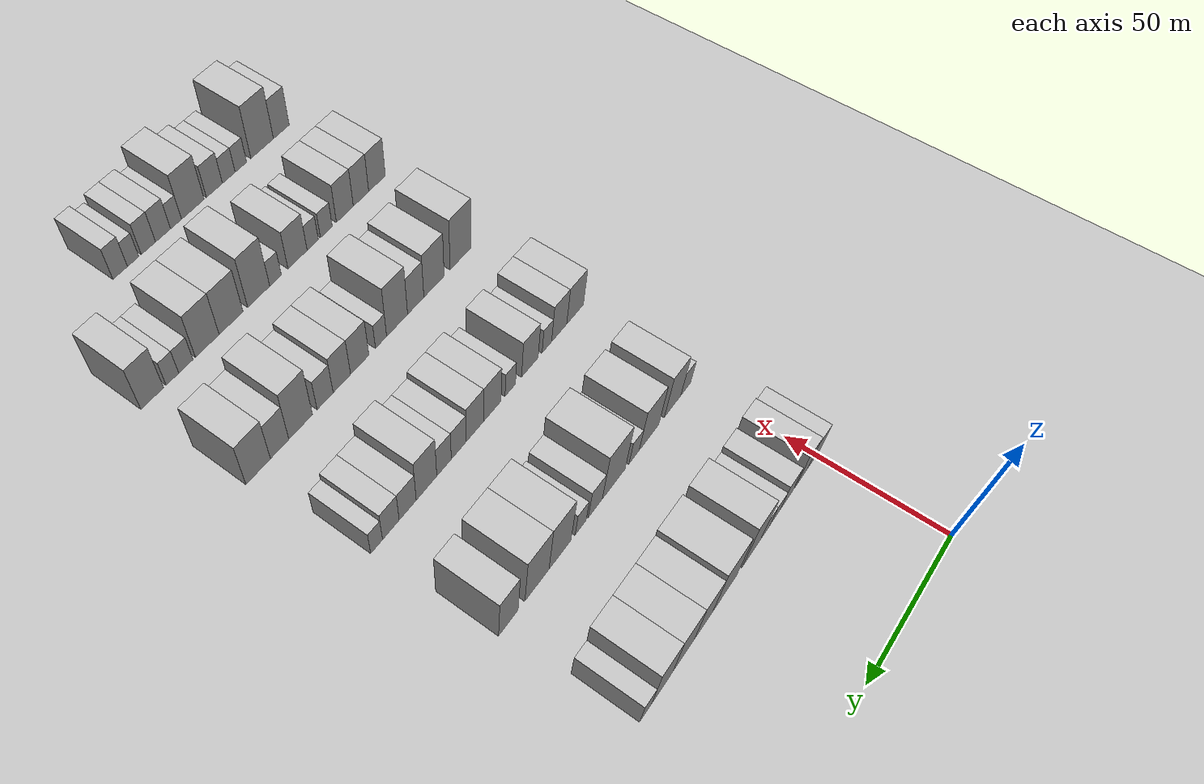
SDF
<sdf version="1.6">
 <world name="default">
  <include><name>ground_plane_1</name><uri>model://HANNAS_ground_plane</uri></include>
  <include>
   <name>ground_plane_2</name>
   <uri>model://HANNAS_ground_plane</uri>
   <pose>100 0 0  0 0 0</pose>
  </include>
  <model name="building_70">
   <static>1</static>
   <pose>50.0000 1.8893 0 0.000000 0.000000 0.000000</pose>
   <link name="link">
    <pose>0 0 7.50 0 0 0</pose>
    <collision name="collision"><geometry><box><size>20.0000 6.9284 15.0000</size></box></geometry></collision>
    <visual name="visual">
     <cast_shadows>0</cast_shadows>
     <geometry><box><size>20.0000 6.9284 15.0000</size></box></geometry>
     <material>
      <script>
       <uri>model://HANNAS_wall/materials/scripts</uri>
       <uri>model://HANNAS_wall/materials/textures</uri>
       <name>vrc/HANNAS_wall</name>
      </script>
     </material>
    </visual>
   </link>
  </model>
  <model name="building_71">
   <static>1</static>
   <pose>50.0000 8.9826 0 0.000000 0.000000 0.000000</pose>
   <link name="link">
    <pose>0 0 9.00 0 0 0</pose>
    <collision name="collision"><geometry><box><size>20.0000 7.2582 18.0000</size></box></geometry></collision>
    <visual name="visual">
     <cast_shadows>0</cast_shadows>
     <geometry><box><size>20.0000 7.2582 18.0000</size></box></geometry>
     <material>
      <script>
       <uri>model://HANNAS_wall/materials/scripts</uri>
       <uri>model://HANNAS_wall/materials/textures</uri>
       <name>vrc/HANNAS_wall</name>
      </script>
     </material>
    </visual>
   </link>
  </model>
  <model name="building_72">
   <static>1</static>
   <pose>50.0000 18.1349 0 0.000000 0.000000 0.000000</pose>
   <link name="link">
    <pose>0 0 7.50 0 0 0</pose>
    <collision name="collision"><geometry><box><size>20.0000 7.0466 15.0000</size></box></geometry></collision>
    <visual name="visual">
     <cast_shadows>0</cast_shadows>
     <geometry><box><size>20.0000 7.0466 15.0000</size></box></geometry>
     <material>
      <script>
       <uri>model://HANNAS_wall/materials/scripts</uri>
       <uri>model://HANNAS_wall/materials/textures</uri>
       <name>vrc/HANNAS_wall</name>
      </script>
     </material>
    </visual>
   </link>
  </model>
  <model name="building_73">
   <static>1</static>
   <pose>50.0000 24.2900 0 0.000000 0.000000 0.000000</pose>
   <link name="link">
    <pose>0 0 6.00 0 0 0</pose>
    <collision name="collision"><geometry><box><size>20.0000 5.2636 12.0000</size></box></geometry></collision>
    <visual name="visual">
     <cast_shadows>0</cast_shadows>
     <geometry><box><size>20.0000 5.2636 12.0000</size></box></geometry>
     <material>
      <script>
       <uri>model://HANNAS_wall/materials/scripts</uri>
       <uri>model://HANNAS_wall/materials/textures</uri>
       <name>vrc/HANNAS_wall</name>
      </script>
     </material>
    </visual>
   </link>
  </model>
  <model name="building_74">
   <static>1</static>
   <pose>50.0000 29.3867 0 0.000000 0.000000 0.000000</pose>
   <link name="link">
    <pose>0 0 6.00 0 0 0</pose>
    <collision name="collision"><geometry><box><size>20.0000 4.9297 12.0000</size></box></geometry></collision>
    <visual name="visual">
     <cast_shadows>0</cast_shadows>
     <geometry><box><size>20.0000 4.9297 12.0000</size></box></geometry>
     <material>
      <script>
       <uri>model://HANNAS_wall/materials/scripts</uri>
       <uri>model://HANNAS_wall/materials/textures</uri>
       <name>vrc/HANNAS_wall</name>
      </script>
     </material>
    </visual>
   </link>
  </model>
  <model name="building_75">
   <static>1</static>
   <pose>50.0000 36.7452 0 0.000000 0.000000 0.000000</pose>
   <link name="link">
    <pose>0 0 12.00 0 0 0</pose>
    <collision name="collision"><geometry><box><size>20.0000 9.7875 24.0000</size></box></geometry></collision>
    <visual name="visual">
     <cast_shadows>0</cast_shadows>
     <geometry><box><size>20.0000 9.7875 24.0000</size></box></geometry>
     <material>
      <script>
       <uri>model://HANNAS_wall/materials/scripts</uri>
       <uri>model://HANNAS_wall/materials/textures</uri>
       <name>vrc/HANNAS_wall</name>
      </script>
     </material>
    </visual>
   </link>
  </model>
  <model name="building_76">
   <static>1</static>
   <pose>50.0000 50.6311 0 0.000000 0.000000 0.000000</pose>
   <link name="link">
    <pose>0 0 12.00 0 0 0</pose>
    <collision name="collision"><geometry><box><size>20.0000 11.9843 24.0000</size></box></geometry></collision>
    <visual name="visual">
     <cast_shadows>0</cast_shadows>
     <geometry><box><size>20.0000 11.9843 24.0000</size></box></geometry>
     <material>
      <script>
       <uri>model://HANNAS_wall/materials/scripts</uri>
       <uri>model://HANNAS_wall/materials/textures</uri>
       <name>vrc/HANNAS_wall</name>
      </script>
     </material>
    </visual>
   </link>
  </model>
  <model name="building_77">
   <static>1</static>
   <pose>50.0000 61.1894 0 0.000000 0.000000 0.000000</pose>
   <link name="link">
    <pose>0 0 10.50 0 0 0</pose>
    <collision name="collision"><geometry><box><size>20.0000 9.1323 21.0000</size></box></geometry></collision>
    <visual name="visual">
     <cast_shadows>0</cast_shadows>
     <geometry><box><size>20.0000 9.1323 21.0000</size></box></geometry>
     <material>
      <script>
       <uri>model://HANNAS_wall/materials/scripts</uri>
       <uri>model://HANNAS_wall/materials/textures</uri>
       <name>vrc/HANNAS_wall</name>
      </script>
     </material>
    </visual>
   </link>
  </model>
  <model name="building_78">
   <static>1</static>
   <pose>50.0000 70.8475 0 0.000000 0.000000 0.000000</pose>
   <link name="link">
    <pose>0 0 10.50 0 0 0</pose>
    <collision name="collision"><geometry><box><size>20.0000 10.1840 21.0000</size></box></geometry></collision>
    <visual name="visual">
     <cast_shadows>0</cast_shadows>
     <geometry><box><size>20.0000 10.1840 21.0000</size></box></geometry>
     <material>
      <script>
       <uri>model://HANNAS_wall/materials/scripts</uri>
       <uri>model://HANNAS_wall/materials/textures</uri>
       <name>vrc/HANNAS_wall</name>
      </script>
     </material>
    </visual>
   </link>
  </model>
  <model name="building_79">
   <static>1</static>
   <pose>50.0000 80.8786 0 0.000000 0.000000 0.000000</pose>
   <link name="link">
    <pose>0 0 10.50 0 0 0</pose>
    <collision name="collision"><geometry><box><size>20.0000 9.8780 21.0000</size></box></geometry></collision>
    <visual name="visual">
     <cast_shadows>0</cast_shadows>
     <geometry><box><size>20.0000 9.8780 21.0000</size></box></geometry>
     <material>
      <script>
       <uri>model://HANNAS_wall/materials/scripts</uri>
       <uri>model://HANNAS_wall/materials/textures</uri>
       <name>vrc/HANNAS_wall</name>
      </script>
     </material>
    </visual>
   </link>
  </model>
  <model name="building_80">
   <static>1</static>
   <pose>50.0000 88.5451 0 0.000000 0.000000 0.000000</pose>
   <link name="link">
    <pose>0 0 6.00 0 0 0</pose>
    <collision name="collision"><geometry><box><size>20.0000 5.4552 12.0000</size></box></geometry></collision>
    <visual name="visual">
     <cast_shadows>0</cast_shadows>
     <geometry><box><size>20.0000 5.4552 12.0000</size></box></geometry>
     <material>
      <script>
       <uri>model://HANNAS_wall/materials/scripts</uri>
       <uri>model://HANNAS_wall/materials/textures</uri>
       <name>vrc/HANNAS_wall</name>
      </script>
     </material>
    </visual>
   </link>
  </model>
  <model name="building_207">
   <static>1</static>
   <pose>90.0000 3.6659 0 0.000000 0.000000 0.000000</pose>
   <link name="link">
    <pose>0 0 6.00 0 0 0</pose>
    <collision name="collision"><geometry><box><size>20.0000 5.4008 12.0000</size></box></geometry></collision>
    <visual name="visual">
     <cast_shadows>0</cast_shadows>
     <geometry><box><size>20.0000 5.4008 12.0000</size></box></geometry>
     <material>
      <script>
       <uri>model://HANNAS_wall/materials/scripts</uri>
       <uri>model://HANNAS_wall/materials/textures</uri>
       <name>vrc/HANNAS_wall</name>
      </script>
     </material>
    </visual>
   </link>
  </model>
  <model name="building_208">
   <static>1</static>
   <pose>90.0000 10.7605 0 0.000000 0.000000 0.000000</pose>
   <link name="link">
    <pose>0 0 10.50 0 0 0</pose>
    <collision name="collision"><geometry><box><size>20.0000 8.7885 21.0000</size></box></geometry></collision>
    <visual name="visual">
     <cast_shadows>0</cast_shadows>
     <geometry><box><size>20.0000 8.7885 21.0000</size></box></geometry>
     <material>
      <script>
       <uri>model://HANNAS_wall/materials/scripts</uri>
       <uri>model://HANNAS_wall/materials/textures</uri>
       <name>vrc/HANNAS_wall</name>
      </script>
     </material>
    </visual>
   </link>
  </model>
  <model name="building_209">
   <static>1</static>
   <pose>90.0000 23.2737 0 0.000000 0.000000 0.000000</pose>
   <link name="link">
    <pose>0 0 10.50 0 0 0</pose>
    <collision name="collision"><geometry><box><size>20.0000 10.2378 21.0000</size></box></geometry></collision>
    <visual name="visual">
     <cast_shadows>0</cast_shadows>
     <geometry><box><size>20.0000 10.2378 21.0000</size></box></geometry>
     <material>
      <script>
       <uri>model://HANNAS_wall/materials/scripts</uri>
       <uri>model://HANNAS_wall/materials/textures</uri>
       <name>vrc/HANNAS_wall</name>
      </script>
     </material>
    </visual>
   </link>
  </model>
  <model name="building_210">
   <static>1</static>
   <pose>90.0000 31.0014 0 0.000000 0.000000 0.000000</pose>
   <link name="link">
    <pose>0 0 6.00 0 0 0</pose>
    <collision name="collision"><geometry><box><size>20.0000 5.2177 12.0000</size></box></geometry></collision>
    <visual name="visual">
     <cast_shadows>0</cast_shadows>
     <geometry><box><size>20.0000 5.2177 12.0000</size></box></geometry>
     <material>
      <script>
       <uri>model://HANNAS_wall/materials/scripts</uri>
       <uri>model://HANNAS_wall/materials/textures</uri>
       <name>vrc/HANNAS_wall</name>
      </script>
     </material>
    </visual>
   </link>
  </model>
  <model name="building_211">
   <static>1</static>
   <pose>90.0000 41.2918 0 0.000000 0.000000 0.000000</pose>
   <link name="link">
    <pose>0 0 12.00 0 0 0</pose>
    <collision name="collision"><geometry><box><size>20.0000 11.3631 24.0000</size></box></geometry></collision>
    <visual name="visual">
     <cast_shadows>0</cast_shadows>
     <geometry><box><size>20.0000 11.3631 24.0000</size></box></geometry>
     <material>
      <script>
       <uri>model://HANNAS_wall/materials/scripts</uri>
       <uri>model://HANNAS_wall/materials/textures</uri>
       <name>vrc/HANNAS_wall</name>
      </script>
     </material>
    </visual>
   </link>
  </model>
  <model name="building_212">
   <static>1</static>
   <pose>90.0000 50.3763 0 0.000000 0.000000 0.000000</pose>
   <link name="link">
    <pose>0 0 7.50 0 0 0</pose>
    <collision name="collision"><geometry><box><size>20.0000 6.8061 15.0000</size></box></geometry></collision>
    <visual name="visual">
     <cast_shadows>0</cast_shadows>
     <geometry><box><size>20.0000 6.8061 15.0000</size></box></geometry>
     <material>
      <script>
       <uri>model://HANNAS_wall/materials/scripts</uri>
       <uri>model://HANNAS_wall/materials/textures</uri>
       <name>vrc/HANNAS_wall</name>
      </script>
     </material>
    </visual>
   </link>
  </model>
  <model name="building_213">
   <static>1</static>
   <pose>90.0000 57.3790 0 0.000000 0.000000 0.000000</pose>
   <link name="link">
    <pose>0 0 6.00 0 0 0</pose>
    <collision name="collision"><geometry><box><size>20.0000 5.1992 12.0000</size></box></geometry></collision>
    <visual name="visual">
     <cast_shadows>0</cast_shadows>
     <geometry><box><size>20.0000 5.1992 12.0000</size></box></geometry>
     <material>
      <script>
       <uri>model://HANNAS_wall/materials/scripts</uri>
       <uri>model://HANNAS_wall/materials/textures</uri>
       <name>vrc/HANNAS_wall</name>
      </script>
     </material>
    </visual>
   </link>
  </model>
  <model name="building_214">
   <static>1</static>
   <pose>90.0000 67.0422 0 0.000000 0.000000 0.000000</pose>
   <link name="link">
    <pose>0 0 12.00 0 0 0</pose>
    <collision name="collision"><geometry><box><size>20.0000 10.1273 24.0000</size></box></geometry></collision>
    <visual name="visual">
     <cast_shadows>0</cast_shadows>
     <geometry><box><size>20.0000 10.1273 24.0000</size></box></geometry>
     <material>
      <script>
       <uri>model://HANNAS_wall/materials/scripts</uri>
       <uri>model://HANNAS_wall/materials/textures</uri>
       <name>vrc/HANNAS_wall</name>
      </script>
     </material>
    </visual>
   </link>
  </model>
  <model name="building_215">
   <static>1</static>
   <pose>90.0000 77.5126 0 0.000000 0.000000 0.000000</pose>
   <link name="link">
    <pose>0 0 12.00 0 0 0</pose>
    <collision name="collision"><geometry><box><size>20.0000 10.8135 24.0000</size></box></geometry></collision>
    <visual name="visual">
     <cast_shadows>0</cast_shadows>
     <geometry><box><size>20.0000 10.8135 24.0000</size></box></geometry>
     <material>
      <script>
       <uri>model://HANNAS_wall/materials/scripts</uri>
       <uri>model://HANNAS_wall/materials/textures</uri>
       <name>vrc/HANNAS_wall</name>
      </script>
     </material>
    </visual>
   </link>
  </model>
  <model name="building_216">
   <static>1</static>
   <pose>90.0000 90.1356 0 0.000000 0.000000 0.000000</pose>
   <link name="link">
    <pose>0 0 10.50 0 0 0</pose>
    <collision name="collision"><geometry><box><size>20.0000 8.4326 21.0000</size></box></geometry></collision>
    <visual name="visual">
     <cast_shadows>0</cast_shadows>
     <geometry><box><size>20.0000 8.4326 21.0000</size></box></geometry>
     <material>
      <script>
       <uri>model://HANNAS_wall/materials/scripts</uri>
       <uri>model://HANNAS_wall/materials/textures</uri>
       <name>vrc/HANNAS_wall</name>
      </script>
     </material>
    </visual>
   </link>
  </model>
  <model name="building_340">
   <static>1</static>
   <pose>130.0000 0.8388 0 0.000000 0.000000 0.000000</pose>
   <link name="link">
    <pose>0 0 9.00 0 0 0</pose>
    <collision name="collision"><geometry><box><size>20.0000 8.8246 18.0000</size></box></geometry></collision>
    <visual name="visual">
     <cast_shadows>0</cast_shadows>
     <geometry><box><size>20.0000 8.8246 18.0000</size></box></geometry>
     <material>
      <script>
       <uri>model://HANNAS_wall/materials/scripts</uri>
       <uri>model://HANNAS_wall/materials/textures</uri>
       <name>vrc/HANNAS_wall</name>
      </script>
     </material>
    </visual>
   </link>
  </model>
  <model name="building_341">
   <static>1</static>
   <pose>130.0000 9.1820 0 0.000000 0.000000 0.000000</pose>
   <link name="link">
    <pose>0 0 9.00 0 0 0</pose>
    <collision name="collision"><geometry><box><size>20.0000 7.8620 18.0000</size></box></geometry></collision>
    <visual name="visual">
     <cast_shadows>0</cast_shadows>
     <geometry><box><size>20.0000 7.8620 18.0000</size></box></geometry>
     <material>
      <script>
       <uri>model://HANNAS_wall/materials/scripts</uri>
       <uri>model://HANNAS_wall/materials/textures</uri>
       <name>vrc/HANNAS_wall</name>
      </script>
     </material>
    </visual>
   </link>
  </model>
  <model name="building_342">
   <static>1</static>
   <pose>130.0000 15.5521 0 0.000000 0.000000 0.000000</pose>
   <link name="link">
    <pose>0 0 6.00 0 0 0</pose>
    <collision name="collision"><geometry><box><size>20.0000 4.8782 12.0000</size></box></geometry></collision>
    <visual name="visual">
     <cast_shadows>0</cast_shadows>
     <geometry><box><size>20.0000 4.8782 12.0000</size></box></geometry>
     <material>
      <script>
       <uri>model://HANNAS_wall/materials/scripts</uri>
       <uri>model://HANNAS_wall/materials/textures</uri>
       <name>vrc/HANNAS_wall</name>
      </script>
     </material>
    </visual>
   </link>
  </model>
  <model name="building_343">
   <static>1</static>
   <pose>130.0000 24.1397 0 0.000000 0.000000 0.000000</pose>
   <link name="link">
    <pose>0 0 9.00 0 0 0</pose>
    <collision name="collision"><geometry><box><size>20.0000 8.2969 18.0000</size></box></geometry></collision>
    <visual name="visual">
     <cast_shadows>0</cast_shadows>
     <geometry><box><size>20.0000 8.2969 18.0000</size></box></geometry>
     <material>
      <script>
       <uri>model://HANNAS_wall/materials/scripts</uri>
       <uri>model://HANNAS_wall/materials/textures</uri>
       <name>vrc/HANNAS_wall</name>
      </script>
     </material>
    </visual>
   </link>
  </model>
  <model name="building_344">
   <static>1</static>
   <pose>130.0000 33.8391 0 0.000000 0.000000 0.000000</pose>
   <link name="link">
    <pose>0 0 6.00 0 0 0</pose>
    <collision name="collision"><geometry><box><size>20.0000 5.1019 12.0000</size></box></geometry></collision>
    <visual name="visual">
     <cast_shadows>0</cast_shadows>
     <geometry><box><size>20.0000 5.1019 12.0000</size></box></geometry>
     <material>
      <script>
       <uri>model://HANNAS_wall/materials/scripts</uri>
       <uri>model://HANNAS_wall/materials/textures</uri>
       <name>vrc/HANNAS_wall</name>
      </script>
     </material>
    </visual>
   </link>
  </model>
  <model name="building_345">
   <static>1</static>
   <pose>130.0000 42.5099 0 0.000000 0.000000 0.000000</pose>
   <link name="link">
    <pose>0 0 9.00 0 0 0</pose>
    <collision name="collision"><geometry><box><size>20.0000 8.2397 18.0000</size></box></geometry></collision>
    <visual name="visual">
     <cast_shadows>0</cast_shadows>
     <geometry><box><size>20.0000 8.2397 18.0000</size></box></geometry>
     <material>
      <script>
       <uri>model://HANNAS_wall/materials/scripts</uri>
       <uri>model://HANNAS_wall/materials/textures</uri>
       <name>vrc/HANNAS_wall</name>
      </script>
     </material>
    </visual>
   </link>
  </model>
  <model name="building_346">
   <static>1</static>
   <pose>130.0000 50.7433 0 0.000000 0.000000 0.000000</pose>
   <link name="link">
    <pose>0 0 9.00 0 0 0</pose>
    <collision name="collision"><geometry><box><size>20.0000 8.2272 18.0000</size></box></geometry></collision>
    <visual name="visual">
     <cast_shadows>0</cast_shadows>
     <geometry><box><size>20.0000 8.2272 18.0000</size></box></geometry>
     <material>
      <script>
       <uri>model://HANNAS_wall/materials/scripts</uri>
       <uri>model://HANNAS_wall/materials/textures</uri>
       <name>vrc/HANNAS_wall</name>
      </script>
     </material>
    </visual>
   </link>
  </model>
  <model name="building_347">
   <static>1</static>
   <pose>130.0000 58.2259 0 0.000000 0.000000 0.000000</pose>
   <link name="link">
    <pose>0 0 7.50 0 0 0</pose>
    <collision name="collision"><geometry><box><size>20.0000 6.7380 15.0000</size></box></geometry></collision>
    <visual name="visual">
     <cast_shadows>0</cast_shadows>
     <geometry><box><size>20.0000 6.7380 15.0000</size></box></geometry>
     <material>
      <script>
       <uri>model://HANNAS_wall/materials/scripts</uri>
       <uri>model://HANNAS_wall/materials/textures</uri>
       <name>vrc/HANNAS_wall</name>
      </script>
     </material>
    </visual>
   </link>
  </model>
  <model name="building_348">
   <static>1</static>
   <pose>130.0000 64.8512 0 0.000000 0.000000 0.000000</pose>
   <link name="link">
    <pose>0 0 7.50 0 0 0</pose>
    <collision name="collision"><geometry><box><size>20.0000 6.5126 15.0000</size></box></geometry></collision>
    <visual name="visual">
     <cast_shadows>0</cast_shadows>
     <geometry><box><size>20.0000 6.5126 15.0000</size></box></geometry>
     <material>
      <script>
       <uri>model://HANNAS_wall/materials/scripts</uri>
       <uri>model://HANNAS_wall/materials/textures</uri>
       <name>vrc/HANNAS_wall</name>
      </script>
     </material>
    </visual>
   </link>
  </model>
  <model name="building_349">
   <static>1</static>
   <pose>130.0000 72.6204 0 0.000000 0.000000 0.000000</pose>
   <link name="link">
    <pose>0 0 10.50 0 0 0</pose>
    <collision name="collision"><geometry><box><size>20.0000 9.0258 21.0000</size></box></geometry></collision>
    <visual name="visual">
     <cast_shadows>0</cast_shadows>
     <geometry><box><size>20.0000 9.0258 21.0000</size></box></geometry>
     <material>
      <script>
       <uri>model://HANNAS_wall/materials/scripts</uri>
       <uri>model://HANNAS_wall/materials/textures</uri>
       <name>vrc/HANNAS_wall</name>
      </script>
     </material>
    </visual>
   </link>
  </model>
  <model name="building_350">
   <static>1</static>
   <pose>130.0000 80.7911 0 0.000000 0.000000 0.000000</pose>
   <link name="link">
    <pose>0 0 7.50 0 0 0</pose>
    <collision name="collision"><geometry><box><size>20.0000 7.3156 15.0000</size></box></geometry></collision>
    <visual name="visual">
     <cast_shadows>0</cast_shadows>
     <geometry><box><size>20.0000 7.3156 15.0000</size></box></geometry>
     <material>
      <script>
       <uri>model://HANNAS_wall/materials/scripts</uri>
       <uri>model://HANNAS_wall/materials/textures</uri>
       <name>vrc/HANNAS_wall</name>
      </script>
     </material>
    </visual>
   </link>
  </model>
  <model name="building_351">
   <static>1</static>
   <pose>130.0000 87.9620 0 0.000000 0.000000 0.000000</pose>
   <link name="link">
    <pose>0 0 7.50 0 0 0</pose>
    <collision name="collision"><geometry><box><size>20.0000 7.0263 15.0000</size></box></geometry></collision>
    <visual name="visual">
     <cast_shadows>0</cast_shadows>
     <geometry><box><size>20.0000 7.0263 15.0000</size></box></geometry>
     <material>
      <script>
       <uri>model://HANNAS_wall/materials/scripts</uri>
       <uri>model://HANNAS_wall/materials/textures</uri>
       <name>vrc/HANNAS_wall</name>
      </script>
     </material>
    </visual>
   </link>
  </model>
  <model name="building_352">
   <static>1</static>
   <pose>130.0000 93.9219 0 0.000000 0.000000 0.000000</pose>
   <link name="link">
    <pose>0 0 6.00 0 0 0</pose>
    <collision name="collision"><geometry><box><size>20.0000 4.8934 12.0000</size></box></geometry></collision>
    <visual name="visual">
     <cast_shadows>0</cast_shadows>
     <geometry><box><size>20.0000 4.8934 12.0000</size></box></geometry>
     <material>
      <script>
       <uri>model://HANNAS_wall/materials/scripts</uri>
       <uri>model://HANNAS_wall/materials/textures</uri>
       <name>vrc/HANNAS_wall</name>
      </script>
     </material>
    </visual>
   </link>
  </model>
  <model name="building_483">
   <static>1</static>
   <pose>170.0000 4.5511 0 0.000000 0.000000 0.000000</pose>
   <link name="link">
    <pose>0 0 12.00 0 0 0</pose>
    <collision name="collision"><geometry><box><size>20.0000 10.5824 24.0000</size></box></geometry></collision>
    <visual name="visual">
     <cast_shadows>0</cast_shadows>
     <geometry><box><size>20.0000 10.5824 24.0000</size></box></geometry>
     <material>
      <script>
       <uri>model://HANNAS_wall/materials/scripts</uri>
       <uri>model://HANNAS_wall/materials/textures</uri>
       <name>vrc/HANNAS_wall</name>
      </script>
     </material>
    </visual>
   </link>
  </model>
  <model name="building_484">
   <static>1</static>
   <pose>170.0000 17.8468 0 0.000000 0.000000 0.000000</pose>
   <link name="link">
    <pose>0 0 10.50 0 0 0</pose>
    <collision name="collision"><geometry><box><size>20.0000 10.0090 21.0000</size></box></geometry></collision>
    <visual name="visual">
     <cast_shadows>0</cast_shadows>
     <geometry><box><size>20.0000 10.0090 21.0000</size></box></geometry>
     <material>
      <script>
       <uri>model://HANNAS_wall/materials/scripts</uri>
       <uri>model://HANNAS_wall/materials/textures</uri>
       <name>vrc/HANNAS_wall</name>
      </script>
     </material>
    </visual>
   </link>
  </model>
  <model name="building_485">
   <static>1</static>
   <pose>170.0000 26.7769 0 0.000000 0.000000 0.000000</pose>
   <link name="link">
    <pose>0 0 9.00 0 0 0</pose>
    <collision name="collision"><geometry><box><size>20.0000 7.8512 18.0000</size></box></geometry></collision>
    <visual name="visual">
     <cast_shadows>0</cast_shadows>
     <geometry><box><size>20.0000 7.8512 18.0000</size></box></geometry>
     <material>
      <script>
       <uri>model://HANNAS_wall/materials/scripts</uri>
       <uri>model://HANNAS_wall/materials/textures</uri>
       <name>vrc/HANNAS_wall</name>
      </script>
     </material>
    </visual>
   </link>
  </model>
  <model name="building_486">
   <static>1</static>
   <pose>170.0000 35.6422 0 0.000000 0.000000 0.000000</pose>
   <link name="link">
    <pose>0 0 12.00 0 0 0</pose>
    <collision name="collision"><geometry><box><size>20.0000 9.8793 24.0000</size></box></geometry></collision>
    <visual name="visual">
     <cast_shadows>0</cast_shadows>
     <geometry><box><size>20.0000 9.8793 24.0000</size></box></geometry>
     <material>
      <script>
       <uri>model://HANNAS_wall/materials/scripts</uri>
       <uri>model://HANNAS_wall/materials/textures</uri>
       <name>vrc/HANNAS_wall</name>
      </script>
     </material>
    </visual>
   </link>
  </model>
  <model name="building_487">
   <static>1</static>
   <pose>170.0000 43.1734 0 0.000000 0.000000 0.000000</pose>
   <link name="link">
    <pose>0 0 6.00 0 0 0</pose>
    <collision name="collision"><geometry><box><size>20.0000 5.1831 12.0000</size></box></geometry></collision>
    <visual name="visual">
     <cast_shadows>0</cast_shadows>
     <geometry><box><size>20.0000 5.1831 12.0000</size></box></geometry>
     <material>
      <script>
       <uri>model://HANNAS_wall/materials/scripts</uri>
       <uri>model://HANNAS_wall/materials/textures</uri>
       <name>vrc/HANNAS_wall</name>
      </script>
     </material>
    </visual>
   </link>
  </model>
  <model name="building_488">
   <static>1</static>
   <pose>170.0000 52.8938 0 0.000000 0.000000 0.000000</pose>
   <link name="link">
    <pose>0 0 9.00 0 0 0</pose>
    <collision name="collision"><geometry><box><size>20.0000 8.2577 18.0000</size></box></geometry></collision>
    <visual name="visual">
     <cast_shadows>0</cast_shadows>
     <geometry><box><size>20.0000 8.2577 18.0000</size></box></geometry>
     <material>
      <script>
       <uri>model://HANNAS_wall/materials/scripts</uri>
       <uri>model://HANNAS_wall/materials/textures</uri>
       <name>vrc/HANNAS_wall</name>
      </script>
     </material>
    </visual>
   </link>
  </model>
  <model name="building_489">
   <static>1</static>
   <pose>170.0000 60.8734 0 0.000000 0.000000 0.000000</pose>
   <link name="link">
    <pose>0 0 9.00 0 0 0</pose>
    <collision name="collision"><geometry><box><size>20.0000 7.7016 18.0000</size></box></geometry></collision>
    <visual name="visual">
     <cast_shadows>0</cast_shadows>
     <geometry><box><size>20.0000 7.7016 18.0000</size></box></geometry>
     <material>
      <script>
       <uri>model://HANNAS_wall/materials/scripts</uri>
       <uri>model://HANNAS_wall/materials/textures</uri>
       <name>vrc/HANNAS_wall</name>
      </script>
     </material>
    </visual>
   </link>
  </model>
  <model name="building_490">
   <static>1</static>
   <pose>170.0000 68.2044 0 0.000000 0.000000 0.000000</pose>
   <link name="link">
    <pose>0 0 7.50 0 0 0</pose>
    <collision name="collision"><geometry><box><size>20.0000 6.9603 15.0000</size></box></geometry></collision>
    <visual name="visual">
     <cast_shadows>0</cast_shadows>
     <geometry><box><size>20.0000 6.9603 15.0000</size></box></geometry>
     <material>
      <script>
       <uri>model://HANNAS_wall/materials/scripts</uri>
       <uri>model://HANNAS_wall/materials/textures</uri>
       <name>vrc/HANNAS_wall</name>
      </script>
     </material>
    </visual>
   </link>
  </model>
  <model name="building_491">
   <static>1</static>
   <pose>170.0000 78.6645 0 0.000000 0.000000 0.000000</pose>
   <link name="link">
    <pose>0 0 12.00 0 0 0</pose>
    <collision name="collision"><geometry><box><size>20.0000 9.9598 24.0000</size></box></geometry></collision>
    <visual name="visual">
     <cast_shadows>0</cast_shadows>
     <geometry><box><size>20.0000 9.9598 24.0000</size></box></geometry>
     <material>
      <script>
       <uri>model://HANNAS_wall/materials/scripts</uri>
       <uri>model://HANNAS_wall/materials/textures</uri>
       <name>vrc/HANNAS_wall</name>
      </script>
     </material>
    </visual>
   </link>
  </model>
  <model name="building_492">
   <static>1</static>
   <pose>170.0000 87.4408 0 0.000000 0.000000 0.000000</pose>
   <link name="link">
    <pose>0 0 9.00 0 0 0</pose>
    <collision name="collision"><geometry><box><size>20.0000 7.5928 18.0000</size></box></geometry></collision>
    <visual name="visual">
     <cast_shadows>0</cast_shadows>
     <geometry><box><size>20.0000 7.5928 18.0000</size></box></geometry>
     <material>
      <script>
       <uri>model://HANNAS_wall/materials/scripts</uri>
       <uri>model://HANNAS_wall/materials/textures</uri>
       <name>vrc/HANNAS_wall</name>
      </script>
     </material>
    </visual>
   </link>
  </model>
  <model name="building_493">
   <static>1</static>
   <pose>170.0000 96.1745 0 0.000000 0.000000 0.000000</pose>
   <link name="link">
    <pose>0 0 10.50 0 0 0</pose>
    <collision name="collision"><geometry><box><size>20.0000 9.8746 21.0000</size></box></geometry></collision>
    <visual name="visual">
     <cast_shadows>0</cast_shadows>
     <geometry><box><size>20.0000 9.8746 21.0000</size></box></geometry>
     <material>
      <script>
       <uri>model://HANNAS_wall/materials/scripts</uri>
       <uri>model://HANNAS_wall/materials/textures</uri>
       <name>vrc/HANNAS_wall</name>
      </script>
     </material>
    </visual>
   </link>
  </model>
  <model name="building_617">
   <static>1</static>
   <pose>210.0000 -3.6853 0 0.000000 0.000000 0.000000</pose>
   <link name="link">
    <pose>0 0 9.00 0 0 0</pose>
    <collision name="collision"><geometry><box><size>20.0000 8.4220 18.0000</size></box></geometry></collision>
    <visual name="visual">
     <cast_shadows>0</cast_shadows>
     <geometry><box><size>20.0000 8.4220 18.0000</size></box></geometry>
     <material>
      <script>
       <uri>model://HANNAS_wall/materials/scripts</uri>
       <uri>model://HANNAS_wall/materials/textures</uri>
       <name>vrc/HANNAS_wall</name>
      </script>
     </material>
    </visual>
   </link>
  </model>
  <model name="building_618">
   <static>1</static>
   <pose>210.0000 4.3441 0 0.000000 0.000000 0.000000</pose>
   <link name="link">
    <pose>0 0 9.00 0 0 0</pose>
    <collision name="collision"><geometry><box><size>20.0000 7.6368 18.0000</size></box></geometry></collision>
    <visual name="visual">
     <cast_shadows>0</cast_shadows>
     <geometry><box><size>20.0000 7.6368 18.0000</size></box></geometry>
     <material>
      <script>
       <uri>model://HANNAS_wall/materials/scripts</uri>
       <uri>model://HANNAS_wall/materials/textures</uri>
       <name>vrc/HANNAS_wall</name>
      </script>
     </material>
    </visual>
   </link>
  </model>
  <model name="building_619">
   <static>1</static>
   <pose>210.0000 12.2893 0 0.000000 0.000000 0.000000</pose>
   <link name="link">
    <pose>0 0 9.00 0 0 0</pose>
    <collision name="collision"><geometry><box><size>20.0000 8.2536 18.0000</size></box></geometry></collision>
    <visual name="visual">
     <cast_shadows>0</cast_shadows>
     <geometry><box><size>20.0000 8.2536 18.0000</size></box></geometry>
     <material>
      <script>
       <uri>model://HANNAS_wall/materials/scripts</uri>
       <uri>model://HANNAS_wall/materials/textures</uri>
       <name>vrc/HANNAS_wall</name>
      </script>
     </material>
    </visual>
   </link>
  </model>
  <model name="building_620">
   <static>1</static>
   <pose>210.0000 21.2501 0 0.000000 0.000000 0.000000</pose>
   <link name="link">
    <pose>0 0 6.00 0 0 0</pose>
    <collision name="collision"><geometry><box><size>20.0000 5.6680 12.0000</size></box></geometry></collision>
    <visual name="visual">
     <cast_shadows>0</cast_shadows>
     <geometry><box><size>20.0000 5.6680 12.0000</size></box></geometry>
     <material>
      <script>
       <uri>model://HANNAS_wall/materials/scripts</uri>
       <uri>model://HANNAS_wall/materials/textures</uri>
       <name>vrc/HANNAS_wall</name>
      </script>
     </material>
    </visual>
   </link>
  </model>
  <model name="building_621">
   <static>1</static>
   <pose>210.0000 27.7079 0 0.000000 0.000000 0.000000</pose>
   <link name="link">
    <pose>0 0 6.00 0 0 0</pose>
    <collision name="collision"><geometry><box><size>20.0000 5.2476 12.0000</size></box></geometry></collision>
    <visual name="visual">
     <cast_shadows>0</cast_shadows>
     <geometry><box><size>20.0000 5.2476 12.0000</size></box></geometry>
     <material>
      <script>
       <uri>model://HANNAS_wall/materials/scripts</uri>
       <uri>model://HANNAS_wall/materials/textures</uri>
       <name>vrc/HANNAS_wall</name>
      </script>
     </material>
    </visual>
   </link>
  </model>
  <model name="building_622">
   <static>1</static>
   <pose>210.0000 34.7785 0 0.000000 0.000000 0.000000</pose>
   <link name="link">
    <pose>0 0 9.00 0 0 0</pose>
    <collision name="collision"><geometry><box><size>20.0000 8.8936 18.0000</size></box></geometry></collision>
    <visual name="visual">
     <cast_shadows>0</cast_shadows>
     <geometry><box><size>20.0000 8.8936 18.0000</size></box></geometry>
     <material>
      <script>
       <uri>model://HANNAS_wall/materials/scripts</uri>
       <uri>model://HANNAS_wall/materials/textures</uri>
       <name>vrc/HANNAS_wall</name>
      </script>
     </material>
    </visual>
   </link>
  </model>
  <model name="building_623">
   <static>1</static>
   <pose>210.0000 44.8510 0 0.000000 0.000000 0.000000</pose>
   <link name="link">
    <pose>0 0 6.00 0 0 0</pose>
    <collision name="collision"><geometry><box><size>20.0000 5.2514 12.0000</size></box></geometry></collision>
    <visual name="visual">
     <cast_shadows>0</cast_shadows>
     <geometry><box><size>20.0000 5.2514 12.0000</size></box></geometry>
     <material>
      <script>
       <uri>model://HANNAS_wall/materials/scripts</uri>
       <uri>model://HANNAS_wall/materials/textures</uri>
       <name>vrc/HANNAS_wall</name>
      </script>
     </material>
    </visual>
   </link>
  </model>
  <model name="building_624">
   <static>1</static>
   <pose>210.0000 52.3741 0 0.000000 0.000000 0.000000</pose>
   <link name="link">
    <pose>0 0 12.00 0 0 0</pose>
    <collision name="collision"><geometry><box><size>20.0000 9.7947 24.0000</size></box></geometry></collision>
    <visual name="visual">
     <cast_shadows>0</cast_shadows>
     <geometry><box><size>20.0000 9.7947 24.0000</size></box></geometry>
     <material>
      <script>
       <uri>model://HANNAS_wall/materials/scripts</uri>
       <uri>model://HANNAS_wall/materials/textures</uri>
       <name>vrc/HANNAS_wall</name>
      </script>
     </material>
    </visual>
   </link>
  </model>
  <model name="building_625">
   <static>1</static>
   <pose>210.0000 64.4086 0 0.000000 0.000000 0.000000</pose>
   <link name="link">
    <pose>0 0 10.50 0 0 0</pose>
    <collision name="collision"><geometry><box><size>20.0000 10.2743 21.0000</size></box></geometry></collision>
    <visual name="visual">
     <cast_shadows>0</cast_shadows>
     <geometry><box><size>20.0000 10.2743 21.0000</size></box></geometry>
     <material>
      <script>
       <uri>model://HANNAS_wall/materials/scripts</uri>
       <uri>model://HANNAS_wall/materials/textures</uri>
       <name>vrc/HANNAS_wall</name>
      </script>
     </material>
    </visual>
   </link>
  </model>
  <model name="building_626">
   <static>1</static>
   <pose>210.0000 74.5337 0 0.000000 0.000000 0.000000</pose>
   <link name="link">
    <pose>0 0 10.50 0 0 0</pose>
    <collision name="collision"><geometry><box><size>20.0000 9.9760 21.0000</size></box></geometry></collision>
    <visual name="visual">
     <cast_shadows>0</cast_shadows>
     <geometry><box><size>20.0000 9.9760 21.0000</size></box></geometry>
     <material>
      <script>
       <uri>model://HANNAS_wall/materials/scripts</uri>
       <uri>model://HANNAS_wall/materials/textures</uri>
       <name>vrc/HANNAS_wall</name>
      </script>
     </material>
    </visual>
   </link>
  </model>
  <model name="building_627">
   <static>1</static>
   <pose>210.0000 83.4262 0 0.000000 0.000000 0.000000</pose>
   <link name="link">
    <pose>0 0 6.00 0 0 0</pose>
    <collision name="collision"><geometry><box><size>20.0000 5.8090 12.0000</size></box></geometry></collision>
    <visual name="visual">
     <cast_shadows>0</cast_shadows>
     <geometry><box><size>20.0000 5.8090 12.0000</size></box></geometry>
     <material>
      <script>
       <uri>model://HANNAS_wall/materials/scripts</uri>
       <uri>model://HANNAS_wall/materials/textures</uri>
       <name>vrc/HANNAS_wall</name>
      </script>
     </material>
    </visual>
   </link>
  </model>
  <model name="building_628">
   <static>1</static>
   <pose>210.0000 88.8884 0 0.000000 0.000000 0.000000</pose>
   <link name="link">
    <pose>0 0 6.00 0 0 0</pose>
    <collision name="collision"><geometry><box><size>20.0000 5.1154 12.0000</size></box></geometry></collision>
    <visual name="visual">
     <cast_shadows>0</cast_shadows>
     <geometry><box><size>20.0000 5.1154 12.0000</size></box></geometry>
     <material>
      <script>
       <uri>model://HANNAS_wall/materials/scripts</uri>
       <uri>model://HANNAS_wall/materials/textures</uri>
       <name>vrc/HANNAS_wall</name>
      </script>
     </material>
    </visual>
   </link>
  </model>
  <model name="building_629">
   <static>1</static>
   <pose>210.0000 96.9407 0 0.000000 0.000000 0.000000</pose>
   <link name="link">
    <pose>0 0 10.50 0 0 0</pose>
    <collision name="collision"><geometry><box><size>20.0000 8.9892 21.0000</size></box></geometry></collision>
    <visual name="visual">
     <cast_shadows>0</cast_shadows>
     <geometry><box><size>20.0000 8.9892 21.0000</size></box></geometry>
     <material>
      <script>
       <uri>model://HANNAS_wall/materials/scripts</uri>
       <uri>model://HANNAS_wall/materials/textures</uri>
       <name>vrc/HANNAS_wall</name>
      </script>
     </material>
    </visual>
   </link>
  </model>
  <model name="building_754">
   <static>1</static>
   <pose>250.0000 -2.2590 0 0.000000 0.000000 0.000000</pose>
   <link name="link">
    <pose>0 0 9.00 0 0 0</pose>
    <collision name="collision"><geometry><box><size>20.0000 7.8212 18.0000</size></box></geometry></collision>
    <visual name="visual">
     <cast_shadows>0</cast_shadows>
     <geometry><box><size>20.0000 7.8212 18.0000</size></box></geometry>
     <material>
      <script>
       <uri>model://HANNAS_wall/materials/scripts</uri>
       <uri>model://HANNAS_wall/materials/textures</uri>
       <name>vrc/HANNAS_wall</name>
      </script>
     </material>
    </visual>
   </link>
  </model>
  <model name="building_755">
   <static>1</static>
   <pose>250.0000 7.1265 0 0.000000 0.000000 0.000000</pose>
   <link name="link">
    <pose>0 0 12.00 0 0 0</pose>
    <collision name="collision"><geometry><box><size>20.0000 10.9497 24.0000</size></box></geometry></collision>
    <visual name="visual">
     <cast_shadows>0</cast_shadows>
     <geometry><box><size>20.0000 10.9497 24.0000</size></box></geometry>
     <material>
      <script>
       <uri>model://HANNAS_wall/materials/scripts</uri>
       <uri>model://HANNAS_wall/materials/textures</uri>
       <name>vrc/HANNAS_wall</name>
      </script>
     </material>
    </visual>
   </link>
  </model>
  <model name="building_756">
   <static>1</static>
   <pose>250.0000 17.3359 0 0.000000 0.000000 0.000000</pose>
   <link name="link">
    <pose>0 0 6.00 0 0 0</pose>
    <collision name="collision"><geometry><box><size>20.0000 5.4691 12.0000</size></box></geometry></collision>
    <visual name="visual">
     <cast_shadows>0</cast_shadows>
     <geometry><box><size>20.0000 5.4691 12.0000</size></box></geometry>
     <material>
      <script>
       <uri>model://HANNAS_wall/materials/scripts</uri>
       <uri>model://HANNAS_wall/materials/textures</uri>
       <name>vrc/HANNAS_wall</name>
      </script>
     </material>
    </visual>
   </link>
  </model>
  <model name="building_757">
   <static>1</static>
   <pose>250.0000 23.0360 0 0.000000 0.000000 0.000000</pose>
   <link name="link">
    <pose>0 0 6.00 0 0 0</pose>
    <collision name="collision"><geometry><box><size>20.0000 5.9311 12.0000</size></box></geometry></collision>
    <visual name="visual">
     <cast_shadows>0</cast_shadows>
     <geometry><box><size>20.0000 5.9311 12.0000</size></box></geometry>
     <material>
      <script>
       <uri>model://HANNAS_wall/materials/scripts</uri>
       <uri>model://HANNAS_wall/materials/textures</uri>
       <name>vrc/HANNAS_wall</name>
      </script>
     </material>
    </visual>
   </link>
  </model>
  <model name="building_758">
   <static>1</static>
   <pose>250.0000 29.7104 0 0.000000 0.000000 0.000000</pose>
   <link name="link">
    <pose>0 0 7.50 0 0 0</pose>
    <collision name="collision"><geometry><box><size>20.0000 7.4178 15.0000</size></box></geometry></collision>
    <visual name="visual">
     <cast_shadows>0</cast_shadows>
     <geometry><box><size>20.0000 7.4178 15.0000</size></box></geometry>
     <material>
      <script>
       <uri>model://HANNAS_wall/materials/scripts</uri>
       <uri>model://HANNAS_wall/materials/textures</uri>
       <name>vrc/HANNAS_wall</name>
      </script>
     </material>
    </visual>
   </link>
  </model>
  <model name="building_759">
   <static>1</static>
   <pose>250.0000 39.5342 0 0.000000 0.000000 0.000000</pose>
   <link name="link">
    <pose>0 0 10.50 0 0 0</pose>
    <collision name="collision"><geometry><box><size>20.0000 10.2297 21.0000</size></box></geometry></collision>
    <visual name="visual">
     <cast_shadows>0</cast_shadows>
     <geometry><box><size>20.0000 10.2297 21.0000</size></box></geometry>
     <material>
      <script>
       <uri>model://HANNAS_wall/materials/scripts</uri>
       <uri>model://HANNAS_wall/materials/textures</uri>
       <name>vrc/HANNAS_wall</name>
      </script>
     </material>
    </visual>
   </link>
  </model>
  <model name="building_760">
   <static>1</static>
   <pose>250.0000 47.0741 0 0.000000 0.000000 0.000000</pose>
   <link name="link">
    <pose>0 0 6.00 0 0 0</pose>
    <collision name="collision"><geometry><box><size>20.0000 4.8501 12.0000</size></box></geometry></collision>
    <visual name="visual">
     <cast_shadows>0</cast_shadows>
     <geometry><box><size>20.0000 4.8501 12.0000</size></box></geometry>
     <material>
      <script>
       <uri>model://HANNAS_wall/materials/scripts</uri>
       <uri>model://HANNAS_wall/materials/textures</uri>
       <name>vrc/HANNAS_wall</name>
      </script>
     </material>
    </visual>
   </link>
  </model>
  <model name="building_761">
   <static>1</static>
   <pose>250.0000 52.7653 0 0.000000 0.000000 0.000000</pose>
   <link name="link">
    <pose>0 0 7.50 0 0 0</pose>
    <collision name="collision"><geometry><box><size>20.0000 6.5323 15.0000</size></box></geometry></collision>
    <visual name="visual">
     <cast_shadows>0</cast_shadows>
     <geometry><box><size>20.0000 6.5323 15.0000</size></box></geometry>
     <material>
      <script>
       <uri>model://HANNAS_wall/materials/scripts</uri>
       <uri>model://HANNAS_wall/materials/textures</uri>
       <name>vrc/HANNAS_wall</name>
      </script>
     </material>
    </visual>
   </link>
  </model>
  <model name="building_762">
   <static>1</static>
   <pose>250.0000 59.1099 0 0.000000 0.000000 0.000000</pose>
   <link name="link">
    <pose>0 0 7.50 0 0 0</pose>
    <collision name="collision"><geometry><box><size>20.0000 6.1569 15.0000</size></box></geometry></collision>
    <visual name="visual">
     <cast_shadows>0</cast_shadows>
     <geometry><box><size>20.0000 6.1569 15.0000</size></box></geometry>
     <material>
      <script>
       <uri>model://HANNAS_wall/materials/scripts</uri>
       <uri>model://HANNAS_wall/materials/textures</uri>
       <name>vrc/HANNAS_wall</name>
      </script>
     </material>
    </visual>
   </link>
  </model>
  <model name="building_763">
   <static>1</static>
   <pose>250.0000 65.5950 0 0.000000 0.000000 0.000000</pose>
   <link name="link">
    <pose>0 0 6.00 0 0 0</pose>
    <collision name="collision"><geometry><box><size>20.0000 4.8134 12.0000</size></box></geometry></collision>
    <visual name="visual">
     <cast_shadows>0</cast_shadows>
     <geometry><box><size>20.0000 4.8134 12.0000</size></box></geometry>
     <material>
      <script>
       <uri>model://HANNAS_wall/materials/scripts</uri>
       <uri>model://HANNAS_wall/materials/textures</uri>
       <name>vrc/HANNAS_wall</name>
      </script>
     </material>
    </visual>
   </link>
  </model>
  <model name="building_764">
   <static>1</static>
   <pose>250.0000 71.0429 0 0.000000 0.000000 0.000000</pose>
   <link name="link">
    <pose>0 0 7.50 0 0 0</pose>
    <collision name="collision"><geometry><box><size>20.0000 6.0823 15.0000</size></box></geometry></collision>
    <visual name="visual">
     <cast_shadows>0</cast_shadows>
     <geometry><box><size>20.0000 6.0823 15.0000</size></box></geometry>
     <material>
      <script>
       <uri>model://HANNAS_wall/materials/scripts</uri>
       <uri>model://HANNAS_wall/materials/textures</uri>
       <name>vrc/HANNAS_wall</name>
      </script>
     </material>
    </visual>
   </link>
  </model>
 </world>
</sdf>
